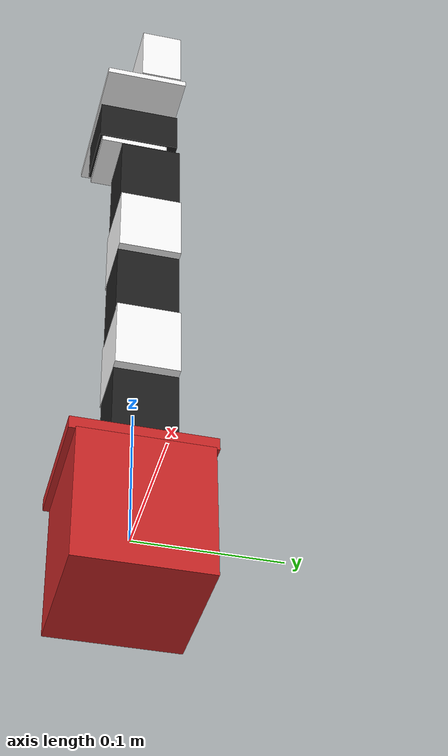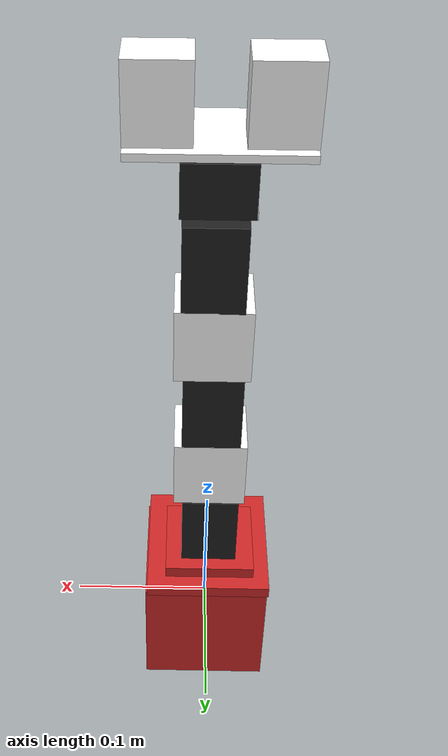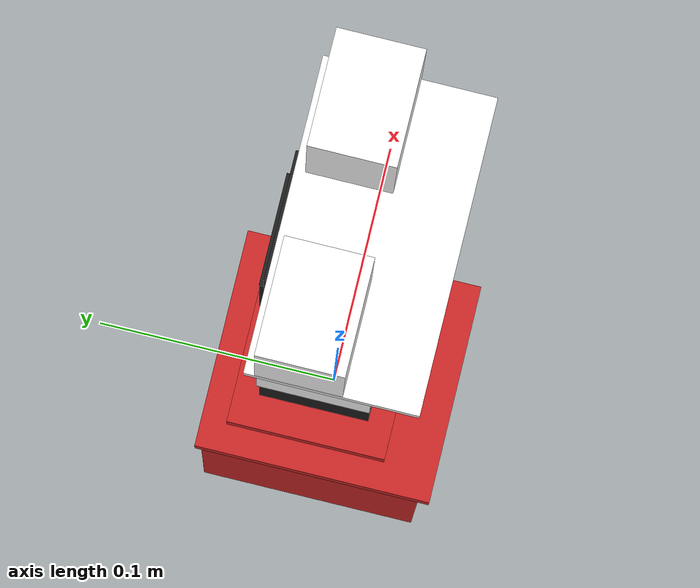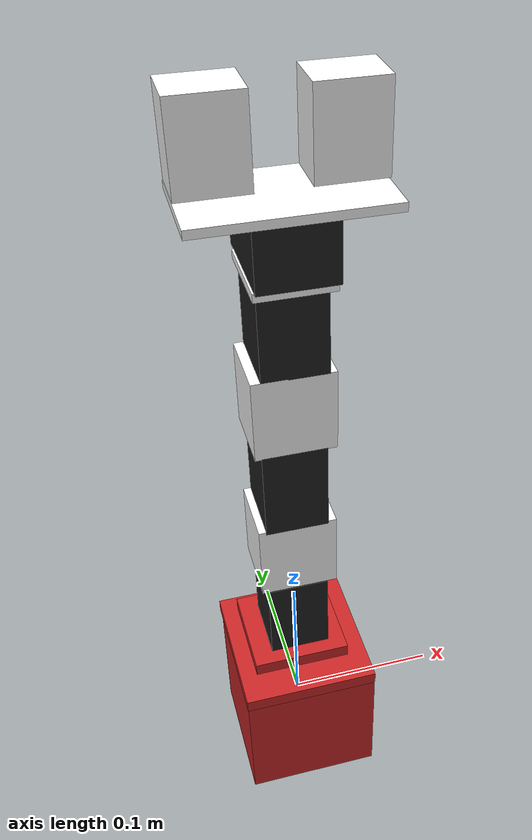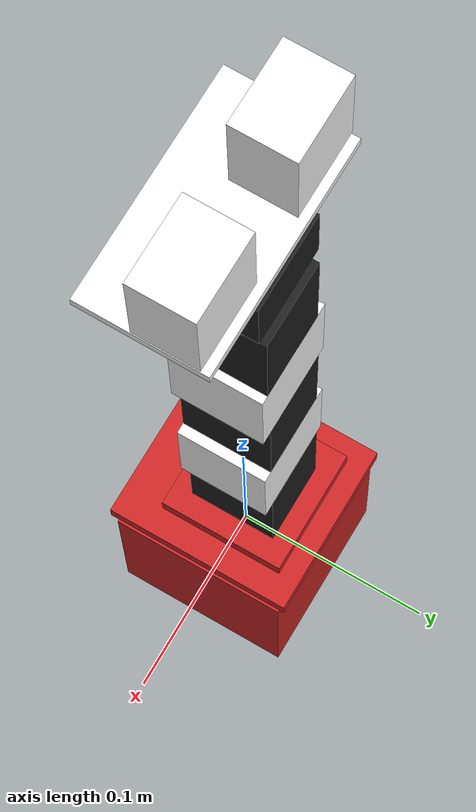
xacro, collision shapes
<?xml version="1.0"?>

<robot name="arm" xmlns:xacro="http://www.ros.org/wiki/xacro">
<xacro:include filename="$(find arm_description)/urdf/arm.gazebo.xacro"/>
<xacro:include filename="$(find arm_description)/urdf/arm.transmission.xacro"/>
<xacro:include filename="$(find arm_description)/urdf/camera.urdf.xacro"/>

  <xacro:arg name="hardware_interface" default="PositionJointInterface"/>
  <xacro:arg name="robot_name" default="arm"/>
  <xacro:arg name="origin_xyz" default="0 0 0"/>
  <xacro:arg name="origin_rpy" default="0 0 0"/>

  <link name="base_link">
    <visual>
      <geometry>
        <mesh filename="package://arm_description/meshes/base_link.stl" scale="0.001 0.001 0.001"/>
      </geometry>
      <origin rpy="0 0 0" xyz="0 0 0"/>
    </visual>
    <collision>
      <geometry>
        <!-- BASE -->
        <box size="0.0904 0.09 0.095"/>
      </geometry>
      <origin rpy="0 0 0" xyz="0 0 0"/>
    </collision>
    <inertial>
      <mass value="0.1"/>
      <inertia ixx="1.06682889e+08" ixy="0.0" ixz="0.0" iyy="9.92165844e+07" iyz="0.0" izz="1.26939175e+08"/>
    </inertial>
  </link>

  <joint name="base_1_2" type="fixed">
    <parent link="base_link"/>
    <child link="base_turn"/>
    <origin xyz="-0.0011 -0.011 0.05"/>
  </joint>

  <link name="base_turn">
    <visual>
      <geometry>
        <mesh filename="package://arm_description/meshes/base_turn.stl" scale="0.001 0.001 0.001"/>
      </geometry>
      <origin rpy="0 0 0" xyz="0 0 0"/>
    </visual>
    <collision>
      <geometry>
          <!-- AGGANCIO BASE -->
          <box size="0.090 0.097 0.009"/>
        </geometry>
      <origin rpy="0 0 0" xyz="0 0.01 0.0015"/>
    </collision>
    <inertial>
      <mass value="0.1"/>
      <inertia ixx="1.35223008e+07" ixy="0.0" ixz="0.0" iyy="8.13814925e+06" iyz="0.0" izz="2.14903814e+07"/>
    </inertial>
  </link>

  <joint name="j0" type="revolute">
    <parent link="base_turn"/>
    <child link="base_turn_rot"/>
    <origin xyz="-0.0 0.0155 0.013" rpy = "0 0 -1.57"/>
    <axis xyz="0 0 1" />
    <limit effort="300" velocity="0.1" lower="-2.57" upper="2.57"/>
  </joint>

  <link name="base_turn_rot">
    <visual>
      <geometry>
        <mesh filename="package://arm_description/meshes/base_turn_table_rot.stl" scale="0.001 0.001 0.001"/>
      </geometry>

    </visual>
    <collision>
      <geometry>
          <!-- BASE CIRCOLARE ROTANTE -->
          <box size="0.065 0.065 0.009"/>
        </geometry>
      <origin rpy="0 0 0" xyz="0 -0.001 -0.002"/>
    </collision>

    <inertial>
      <mass value="0.1"/>
      <inertia ixx="3.41992001e+06" ixy="0.0" ixz="0.0" iyy="2.85587836e+06" iyz="0.0" izz="5.84313870e+06"/>
    </inertial>
  </link>

  <joint name="base_turn_rot_dyn2" type="fixed">
    <parent link="base_turn_rot"/>
    <child link="dyn2"/>
    <origin xyz="0 0 0.0385" rpy="0 1.57 1.57 "/>
  </joint>

  <link name="dyn2">
    <visual>
      <geometry>
        <mesh filename="package://arm_description/meshes/dyn.stl" scale="0.01 0.01 0.01"/>
      </geometry>

      <origin rpy="0 0 0" xyz="0 0 0"/>
    </visual>
    <collision>
      <geometry>
          <!--SERVOMOTORE -->
          <box size="0.06 0.045 0.04"/>
        </geometry>
      <origin rpy="0 0 0" xyz="0.008 0 0"/>
    </collision>
     <inertial>
      <mass value="0.1"/>
      <inertia ixx="6.90013881e+01" ixy="0.0" ixz="0.0" iyy="1.24554875e+02" iyz="0.0" izz="1.04295793e+02"/>
    </inertial>
  </link>

  <joint name="j1" type="revolute">
    <parent link="dyn2"/>
    <child link="dyn2_r"/>
    <origin xyz="0 0 0.0" rpy="0 0 0"/>
    <axis xyz="0 0 1" />
    <limit effort="300" velocity="0.1" lower="-3.14" upper="3.14"/>
  </joint>

  <link name="dyn2_r">

  </link>

  <joint name="dyn2_f4" type="fixed">
    <parent link="dyn2_r"/>
    <child link="f4"/>
    <origin xyz="-0.047 0.0 -0.003" rpy="0 1.57 1.57"/>
  </joint>

  <link name="f4">
    <visual>
      <geometry>
       <mesh filename="package://arm_description/meshes/f4_n_f3.stl" scale="0.001 0.001 0.001"/>
      </geometry>
      <origin rpy="0 0 0" xyz="0 0 0"/>
      <material name="white">
        <color rgba="1 1 1 1"/>
      </material>
    </visual>
    <collision>
      <geometry>
          <!-- LINK -->
         <box size="0.05 0.053 0.045"/>
        </geometry>
      <origin rpy="0 0 0" xyz="-0.0042 0.002 0"/>
    </collision>
     <inertial>
      <mass value="0.1"/>
      <inertia ixx="6.90013881e+01" ixy="0.0" ixz="0.0" iyy="1.24554875e+02" iyz="0.0" izz="1.04295793e+02"/>
    </inertial>
  </link>

  <joint name="d4_dyn3" type="fixed">
    <parent link="f4"/>
    <child link="dyn3"/>
    <origin xyz="-0.004 0.0645 0 " rpy="-1.57 3.14 1.57"/>
  </joint>

  <link name="dyn3">
    <visual>
      <geometry>
        <mesh filename="package://arm_description/meshes/dyn.stl" scale="0.01 0.01 0.01"/>
      </geometry>
      <origin rpy="0 0 0" xyz="0 0 0"/>
    </visual>
    <collision>
      <geometry>
          <!-- SERVOMOTORE -->
          <box size="0.06 0.045 0.04"/>
        </geometry>
      <origin rpy="0 0 0" xyz="0.008 0 0"/>
    </collision>
     <inertial>
      <mass value="0.1"/>
      <inertia ixx="6.90013881e+01" ixy="0.0" ixz="0.0" iyy="1.24554875e+02" iyz="0.0" izz="1.04295793e+02"/>
    </inertial>
  </link>

  <joint name="j2" type="revolute">
    <parent link="dyn3"/>
    <child link="dyn3_r"/>
    <origin xyz="0 0 0.0" rpy="0 0 0"/>
    <axis xyz="0 0 1" />
    <limit effort="300" velocity="0.1" lower="-3.14" upper="3.14"/>
  </joint>

  <link name="dyn3_r">

  </link>

  <joint name="dyn3_f5" type="fixed">
    <parent link="dyn3_r"/>
    <child link="f5"/>
    <origin xyz="-0.046 -0.0 -0.002" rpy="1.57 1.57 3.1415 "/>
  </joint>

  <link name="f5">
    <visual>
      <geometry>
        <mesh filename="package://arm_description/meshes/f4_n_f3.stl" scale="0.001 0.001 0.001"/>
      </geometry>
      <origin rpy="0 0 0" xyz="0 0 0"/>
      <material name="white">
        <color rgba="1 1 1 1"/>
      </material>
    </visual>
    <collision>
      <geometry>
          <!-- LINK -->
          <box size="0.05 0.053 0.045"/>
        </geometry>
      <origin rpy="0 0 0" xyz="-0.0031 0.002 0"/>
    </collision>

    <inertial>
      <mass value="0.1"/>
      <inertia ixx="1.13130695e+07" ixy="0.0" ixz="0.0" iyy="8.78052401e+06" iyz="0.0" izz="1.72940286e+07"/>
    </inertial>
  </link>

  <joint name="f5_dyn4" type="fixed">
    <parent link="f5"/>
    <child link="dyn4"/>
    <origin xyz="-0.004 0.065 -0.0" rpy="-1.57 3.1415 1.57 "/>
  </joint>

  <link name="dyn4">
    <visual>
      <geometry>
        <mesh filename="package://arm_description/meshes/dyn.stl" scale="0.01 0.01 0.01"/>
      </geometry>

      <origin rpy="0 0 0" xyz="0 0 0"/>
    </visual>
    <collision>
      <geometry>
          <!-- SERVOMOTORE -->
          <box size="0.06 0.045 0.04"/>
        </geometry>
      <origin rpy="0 0 0" xyz="0.007 0 0"/>
    </collision>

    <inertial>
      <mass value="0.1"/>
      <inertia ixx="6.90013881e+01" ixy="0.0" ixz="0.0" iyy="1.24554875e+02" iyz="0.0" izz="1.04295793e+02"/>
    </inertial>
  </link>

  <joint name="j3" type="revolute">
    <parent link="dyn4"/>
    <child link="dyn4_r"/>
    <origin xyz="0 0 0.0" rpy="0 0 0"/>
    <axis xyz="0 0 1" />
    <limit effort="300" velocity="0.1" lower="-3.14" upper="3.14"/>
  </joint>

  <link name="dyn4_r">

  </link>

  <joint name="f5_wrist" type="fixed">
    <parent link="dyn4_r"/>
    <child link="wrist"/>
    <origin xyz="-0.017 -0.013 0.003" rpy="1.57 1.57 -1.57"/>
  </joint>

  <link name="wrist">
    <visual>
      <geometry>
        <mesh filename="package://arm_description/meshes/wrist.stl" scale="0.001 0.001 0.001"/>
      </geometry>
      <origin rpy="0 0 0" xyz="0 0 0"/>
      <material name="white">
        <color rgba="1 1 1 1"/>
      </material>
    </visual>
    <collision>
      <geometry>
         <!-- PEZZO SOPRA AL SERVO -->
        <box size="0.045 0.05 0.005"/>
      </geometry>
      <origin rpy="0 0 0" xyz="0.005 0 0.008"/>
    </collision>

     <inertial>
      <mass value="0.1"/>
      <inertia ixx="6.90013881e+01" ixy="0.0" ixz="0.0" iyy="1.24554875e+02" iyz="0.0" izz="1.04295793e+02"/>
    </inertial>
  </link>

  <joint name="wrist_dyn5" type="fixed">
    <parent link="wrist"/>
    <child link="dyn5"/>
    <origin xyz="0.0038 -0.013 0.0275" rpy="0 0 1.57"/>
  </joint>

    <link name="dyn5">
    <visual>
      <geometry>
        <mesh filename="package://arm_description/meshes/dyn.stl" scale="0.01 0.01 0.01"/>
      </geometry>
      <origin rpy="0 0 0" xyz="0 0 0"/>
    </visual>
    <collision>
      <geometry>
      <!--SERVOMOTORE 4 -->
          <box size="0.06 0.045 0.035"/>
        </geometry>
      <origin rpy="0 0 0" xyz="0.01 0 0"/>
    </collision>

    <inertial>
      <mass value="0.1"/>
      <inertia ixx="6.90013881e+01" ixy="0.0" ixz="0.0" iyy="1.24554875e+02" iyz="0.0" izz="1.04295793e+02"/>
    </inertial>
  </link>

  <joint name="dyn5_dyn5_r" type="fixed">
    <parent link="dyn5"/>
    <child link="dyn5_r"/>
    <origin xyz="0 0 0.0" rpy="0 0 0"/>
    <axis xyz="0 0 1" />
    <limit effort="300" velocity="0.1" lower="-3.14" upper="3.14"/>
  </joint>

  <link name="dyn5_r">

  </link>

  <joint name="wrist_rotate_dyn5" type="fixed">
    <parent link="dyn5_r"/>
    <child link="crawer_base"/>
    <origin xyz="0.015 0 0.019" rpy="0 0 1.57"/>
  </joint>

  <link name="crawer_base">
    <visual>
      <geometry>
        <mesh filename="package://arm_description/meshes/the_crawer_base.stl" scale="0.001 0.001 0.001"/>
      </geometry>
      <origin rpy="0 0 0" xyz="0 0 0"/>
      <material name="white">
        <color rgba="1 1 1 1"/>
      </material>
    </visual>
    <collision>
      <geometry>
          <!-- BASE AGGANCIO END-EFFECTOR -->
          <box size="0.11 0.06 0.005"/>
        </geometry>
      <origin rpy="0 0 0" xyz="0 0.0038 0.001"/>
    </collision>

    <inertial>
      <mass value="0.1"/>
      <inertia ixx="6.90013881e+01" ixy="0.0" ixz="0.0" iyy="1.24554875e+02" iyz="0.0" izz="1.04295793e+02"/>
    </inertial>
  </link>

  <joint name="crawer_base_crawer_left" type="fixed">
    <parent link="crawer_base"/>
    <child link="crawer_left"/>
    <origin xyz="-0.03 0.015 0.01" rpy="0 -1.57 0"/>
  </joint>

  <link name="crawer_left">
    <visual>
      <geometry>
        <mesh filename="package://arm_description/meshes/the_crawer.stl" scale="0.001 0.001 0.001"/>
      </geometry>
      <origin rpy="0 0 0" xyz="0 0 0"/>
      <material name="white">
        <color rgba="1 1 1 1"/>
      </material>
    </visual>
    <collision>
      <geometry>
          <!-- END EFFECTOR 1 -->
          <box size="0.05 0.03 0.04"/>
        </geometry>
      <origin rpy="0 0 0" xyz="0.02 0 0.005"/>
    </collision>

    <inertial>
      <mass value="0.1"/>
      <inertia ixx="6.90013881e+01" ixy="0.0" ixz="0.0" iyy="1.24554875e+02" iyz="0.0" izz="1.04295793e+02"/>
    </inertial>
  </link>

  <joint name="crawer_base_crawer_right" type="fixed">
    <parent link="crawer_base"/>
    <child link="crawer_right"/>
    <origin xyz="0.03 0.015 0.01" rpy="3.1415 -1.57 0"/>
  </joint>

  <link name="crawer_right">
    <visual>
      <geometry>
        <mesh filename="package://arm_description/meshes/the_crawer.stl" scale="0.001 0.001 0.001"/>
      </geometry>
      <origin rpy="0 0 0" xyz="0 0 0"/>
      <material name="white">
        <color rgba="1 1 1 1"/>
      </material>
    </visual>
    <collision>
      <geometry>
      <!-- END EFFECTOR 2 -->
          <box size="0.05 0.03 0.04"/>
        </geometry>
      <origin rpy="0 0 0" xyz="0.02 0 0.005"/>
    </collision>

    <inertial>
      <mass value="0.1"/>
      <inertia ixx="6.90013881e+01" ixy="0.0" ixz="0.0" iyy="1.24554875e+02" iyz="0.0" izz="1.04295793e+02"/>
    </inertial>
  </link>

  <xacro:camera_sensor xyz="0 0 0" rpy="0 0 0" parent="base_link"/>
  <xacro:arm_gazebo robot_name="arm"/>
<xacro:arm_transmission hardware_interface="PositionJointInterface"/>

</robot>

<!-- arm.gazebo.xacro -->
<robot xmlns:xacro="http://www.ros.org/wiki/xacro">

<xacro:include filename="$(find arm_description)/urdf/camera.urdf.xacro"/>
  <xacro:macro name="arm_gazebo" params="robot_name">

      <!-- Load Gazebo lib and set the robot namespace -->
    <gazebo>
      <plugin name="gazebo_ros_control" filename="libgazebo_ros_control.so">
        <robotNamespace>/$(arg robot_name)</robotNamespace>
      </plugin>
    </gazebo>

    <gazebo reference="f4">
    <material>Gazebo/Red</material>
  </gazebo>

  <gazebo reference="f5">
    <material>Gazebo/Red</material>
  </gazebo>

  <gazebo reference="wrist">
    <material>Gazebo/Red</material>
  </gazebo>

  <gazebo reference="crawer_base">
    <material>Gazebo/Red</material>
  </gazebo>

  <gazebo reference="base_link">
    <material>Gazebo/Red</material>
  </gazebo>

  <gazebo reference="base_turn">
    <material>Gazebo/Red</material>
  </gazebo>

  <gazebo reference="base_turn_rot">
    <material>Gazebo/Red</material>
  </gazebo>

  <gazebo reference="dyn2">
    <material>Gazebo/Black</material>
  </gazebo>

  <gazebo reference="dyn3">
    <material>Gazebo/Black</material>
  </gazebo>

  <gazebo reference="dyn4">
    <material>Gazebo/Black</material>
  </gazebo>

  <gazebo reference="dyn5">
    <material>Gazebo/Black</material>
  </gazebo>

  <gazebo reference="crawer_left">
    <material>Gazebo/Red</material>
  </gazebo>

  <gazebo reference="crawer_right">
    <material>Gazebo/Red</material>
  </gazebo>

  </xacro:macro>

</robot>

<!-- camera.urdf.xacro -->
<robot xmlns:xacro="http://www.ros.org/wiki/xacro" name="camera">

    <xacro:property name="pi" value="3.1415926535897931"/>

    <xacro:macro name="camera_sensor" params="xyz rpy parent">
        <joint name="camera_sensor_joint" type="fixed">
            <axis xyz="0 1 0" />
            <!-- Se abilito questa sposto la telecamera un po' più dietro -->
           <origin xyz="0 0 0" rpy="0 0 0"/>
            <parent link="base_link"/>
            <child link="camera_link"/>
        </joint>

        <link name="camera_link">
            <collision>
                <origin xyz="0 0.1 0" rpy="0 0 0"/>
                <geometry>
                    <box size="0 0 0"/>
                </geometry>
            </collision>
            <visual>
                <origin xyz="0 0 0" rpy="0 0 0"/>
                <geometry>
                    <box size="0.02 0.08 0.05"/>
                </geometry>
                <material name="iRobot/Green"/>
            </visual>
            <inertial>
                <mass value="0.0001" />
                <origin xyz="0 0 0" rpy="0 0 ${pi}"/>
                <inertia ixx="0.0000001" ixy="0" ixz="0" iyy="0.0000001" iyz="0" izz="0.0000001" />
            </inertial>
        </link>

        <gazebo reference="camera_link">
            <sensor type="camera" name="camera">
                <update_rate>30.0</update_rate>
                <camera name="head">
                    <horizontal_fov>1.3962634</horizontal_fov>
                    <image>
                        <width>800</width>
                        <height>600</height>
                        <format>R8G8B8</format>
                    </image>
                    <clip>
                        <near>0.02</near>
                        <far>300</far>
                    </clip>
                    <noise>
                        <type>gaussian</type>
                        <mean>0.0</mean>
                        <stddev>0.007</stddev>
                    </noise>
                </camera>
                <plugin name="camera_controller" filename="libgazebo_ros_camera.so">
                    <alwaysOn>true</alwaysOn>
                    <updateRate>0.0</updateRate>
                    <cameraName>iRobot/camera</cameraName>
                    <imageTopicName>image_raw</imageTopicName>
                    <cameraInfoTopicName>camera_info</cameraInfoTopicName>
                    <frameName>camera_link</frameName>
                    <hackBaseline>0.07</hackBaseline>
                    <distortionK1>0.0</distortionK1>
                    <distortionK2>0.0</distortionK2>
                    <distortionK3>0.0</distortionK3>
                    <distortionT1>0.0</distortionT1>
                    <distortionT2>0.0</distortionT2>
                </plugin>
            </sensor>
    </gazebo>

    </xacro:macro>

</robot>
